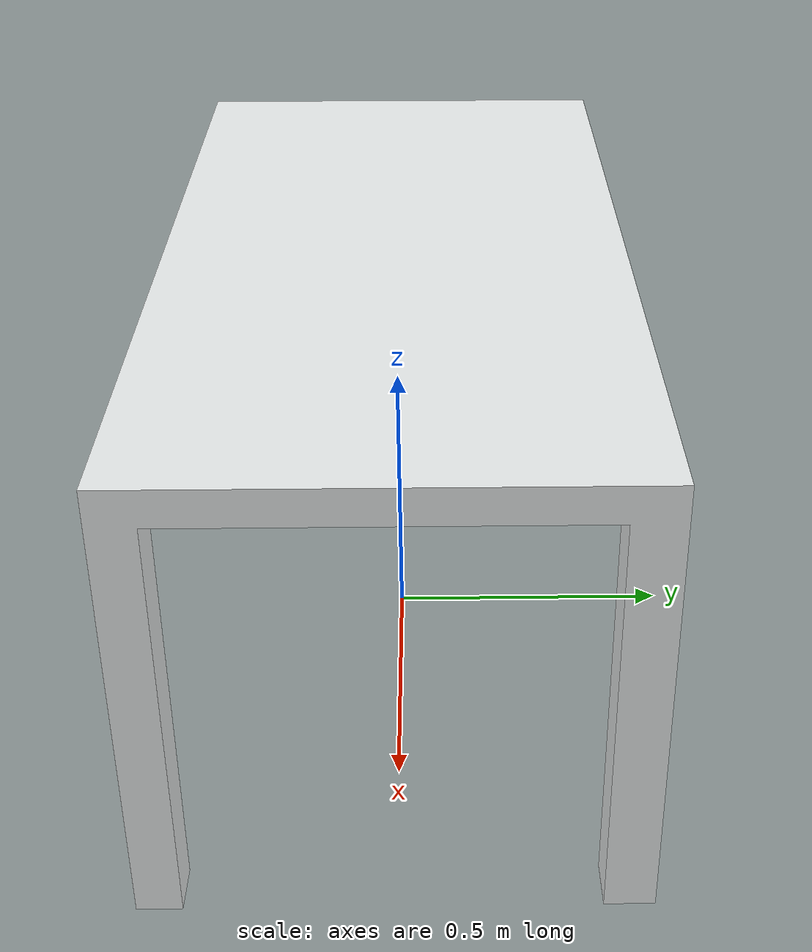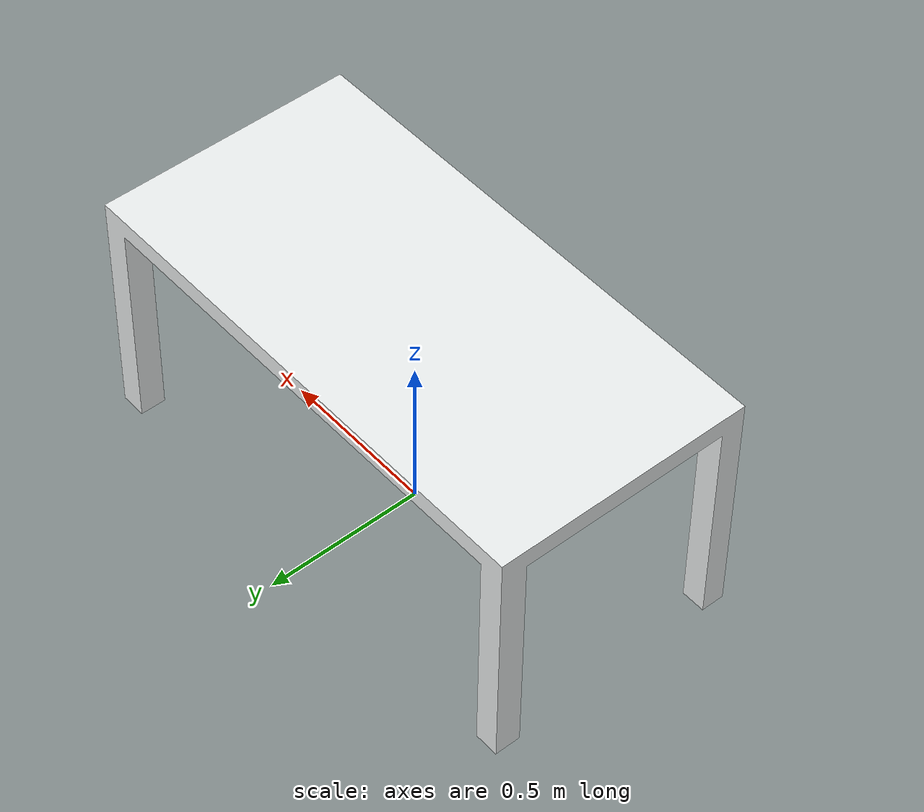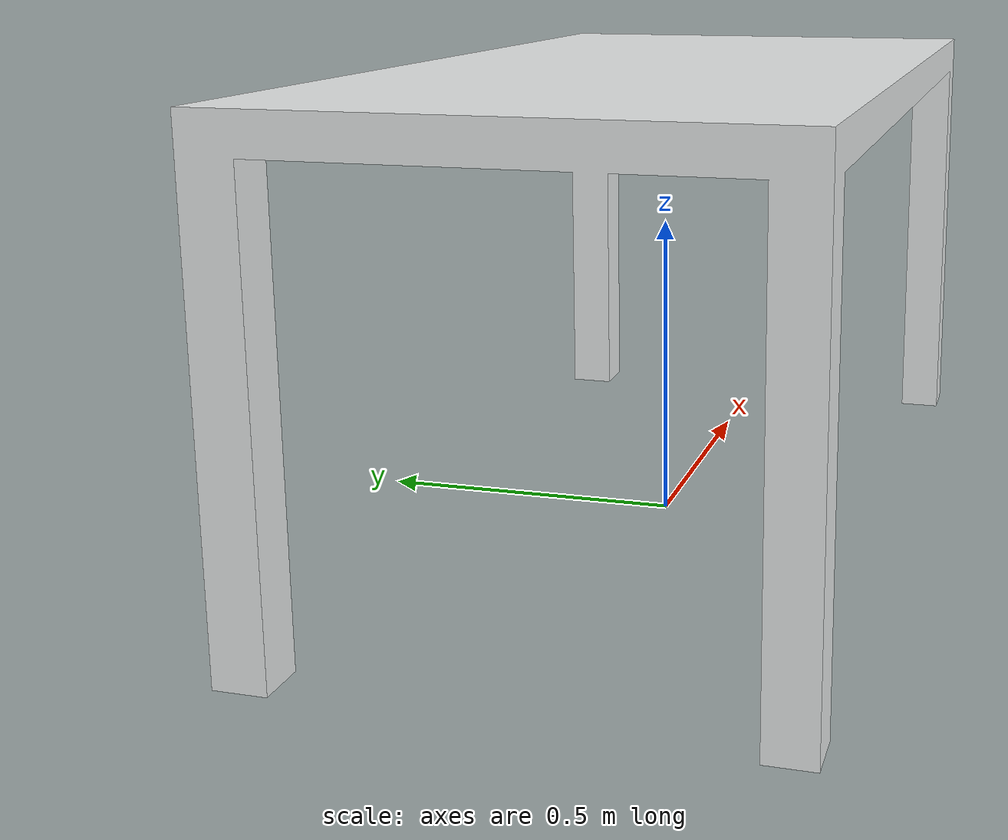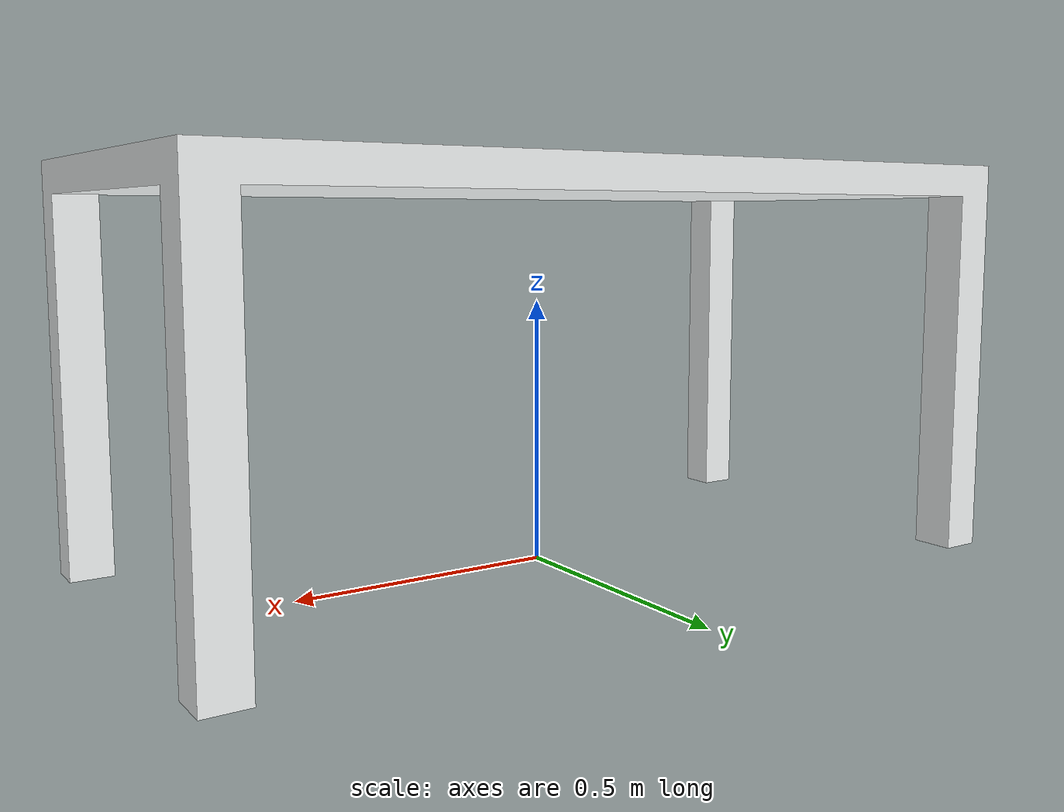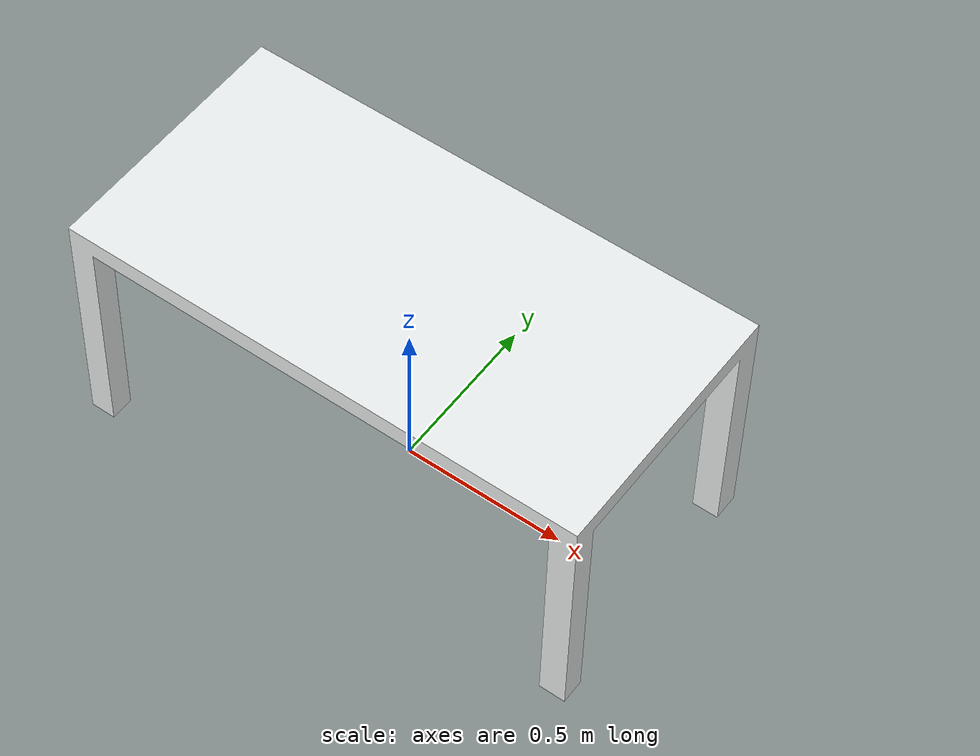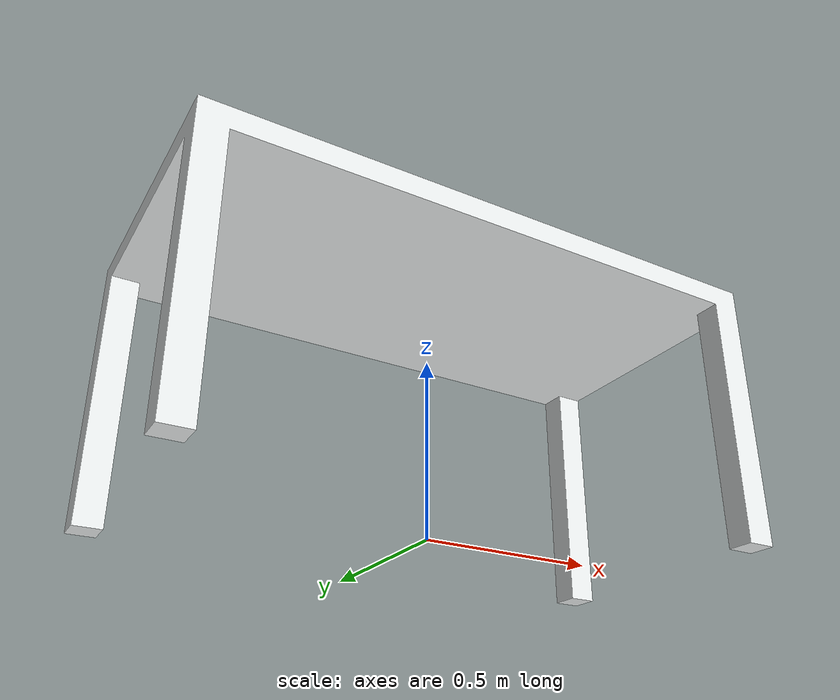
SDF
<?xml version='1.0'?>
<sdf version='1.6'>
  <model name='target_table'>
    <link name='link'>
      <self_collide>0</self_collide>
      <enable_wind>0</enable_wind>
      <kinematic>0</kinematic>
      <pose frame=''>0 0 0 0 -0 0</pose>
      <gravity>1</gravity>
      <inertial>
        <mass>1</mass>
        <pose frame=''>0 0 0 0 -0 0</pose>
        <inertia>
          <ixx>1</ixx>
          <ixy>0</ixy>
          <ixz>0</ixz>
          <iyy>1</iyy>
          <iyz>0</iyz>
          <izz>1</izz>
        </inertia>
      </inertial>
      <visual name='visual'>
        <pose frame=''>0 0 0.73 0 -0 1.57</pose>
        <geometry>
          <mesh>
            <scale>1 1 1</scale>
            <uri>model://target_table/meshes/target_table.dae</uri>
          </mesh>
        </geometry>
      </visual>
      <collision name='collision_0'>
        <laser_retro>0</laser_retro>
        <max_contacts>10</max_contacts>
        <pose frame=''>0 0 0.73 0 -0 0</pose>
        <geometry>
          <box>
            <size>0.8 1.6 0.06</size>
          </box>
        </geometry>
        <surface>
          <friction>
            <ode>
              <mu>1</mu>
              <mu2>1</mu2>
              <fdir1>0 0 0</fdir1>
              <slip1>0</slip1>
              <slip2>0</slip2>
            </ode>
            <torsional>
              <coefficient>1</coefficient>
              <patch_radius>0</patch_radius>
              <surface_radius>0</surface_radius>
              <use_patch_radius>1</use_patch_radius>
              <ode>
                <slip>0</slip>
              </ode>
            </torsional>
          </friction>
          <bounce>
            <restitution_coefficient>0</restitution_coefficient>
            <threshold>1e+06</threshold>
          </bounce>
          <contact>
            <collide_without_contact>0</collide_without_contact>
            <collide_without_contact_bitmask>1</collide_without_contact_bitmask>
            <collide_bitmask>1</collide_bitmask>
            <ode>
              <soft_cfm>0</soft_cfm>
              <soft_erp>0.2</soft_erp>
              <kp>1e+13</kp>
              <kd>1</kd>
              <max_vel>0.01</max_vel>
              <min_depth>0</min_depth>
            </ode>
            <bullet>
              <split_impulse>1</split_impulse>
              <split_impulse_penetration_threshold>-0.01</split_impulse_penetration_threshold>
              <soft_cfm>0</soft_cfm>
              <soft_erp>0.2</soft_erp>
              <kp>1e+13</kp>
              <kd>1</kd>
            </bullet>
          </contact>
        </surface>
      </collision>
    </link>
    <static>1</static>
    <allow_auto_disable>1</allow_auto_disable>
  </model>
</sdf>
